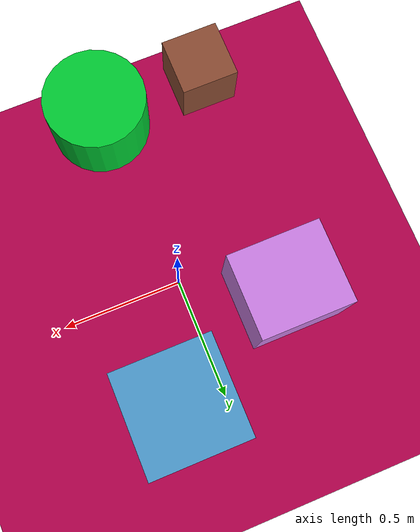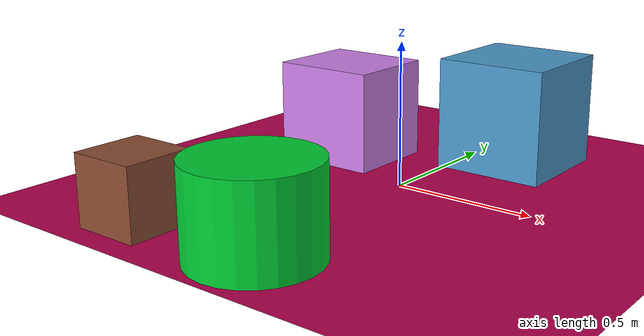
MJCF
<mujoco>
   <asset>
<texture type="skybox" builtin="gradient" rgb1="0.6 0.5 0.6" rgb2="0.6 0.5 0.1" width="256" height="256"/>
<texture name="gradient_0" builtin="gradient" rgb1="0.6 0.3 0.8" rgb2="1.0 0.7 1.0" width="200" height="200"/>
<texture name="flat_1" builtin="flat" rgb1="0.3 0.6 0.8" rgb2="0.3 0.6 0.8"  width="200" height="200"/>
<texture name="flat_2" builtin="flat" rgb1="0.0 0.8 0.2" rgb2="0.0 0.8 0.2"  width="200" height="200"/>
<texture name="gradient_3" builtin="gradient" rgb1="0.6 0.4 0.1" rgb2="0.5 0.2 0.3" width="200" height="200"/><material name="gradient_0_mat" reflectance="0" texture="gradient_0" texuniform="true"/>
<material name="flat_1_mat" reflectance="0" texture="flat_1" texuniform="true"/>
<material name="flat_2_mat" reflectance="0" texture="flat_2" texuniform="true"/>
<material name="gradient_3_mat" reflectance="0" texture="gradient_3" texuniform="true"/>
   </asset>

   <worldbody>
      <light diffuse=".9 .9 .9" pos="0 0 3" dir="0 0 -1"/>
     <geom type="plane" size="1 1 0.1" rgba="0.7 0.0 0.3 1"/>
<geom type="box" pos="-0.37 0.2 0.18" size="0.19 0.17 0.18" material="gradient_0_mat" />
<geom type="box" pos="0.18 0.47 0.2" size="0.2 0.2 0.2" material="flat_1_mat" />
<geom type="cylinder" pos="0.05 -0.77 0.15" size="0.21 0.15 0.15" material="flat_2_mat" />
<geom type="box" pos="-0.42 -0.8 0.12" size="0.12 0.12 0.12" material="gradient_3_mat" /><camera euler="60 0 180" fovy="60" name="camera_a" pos="0 -1.5 1"></camera>   </worldbody>
</mujoco>
